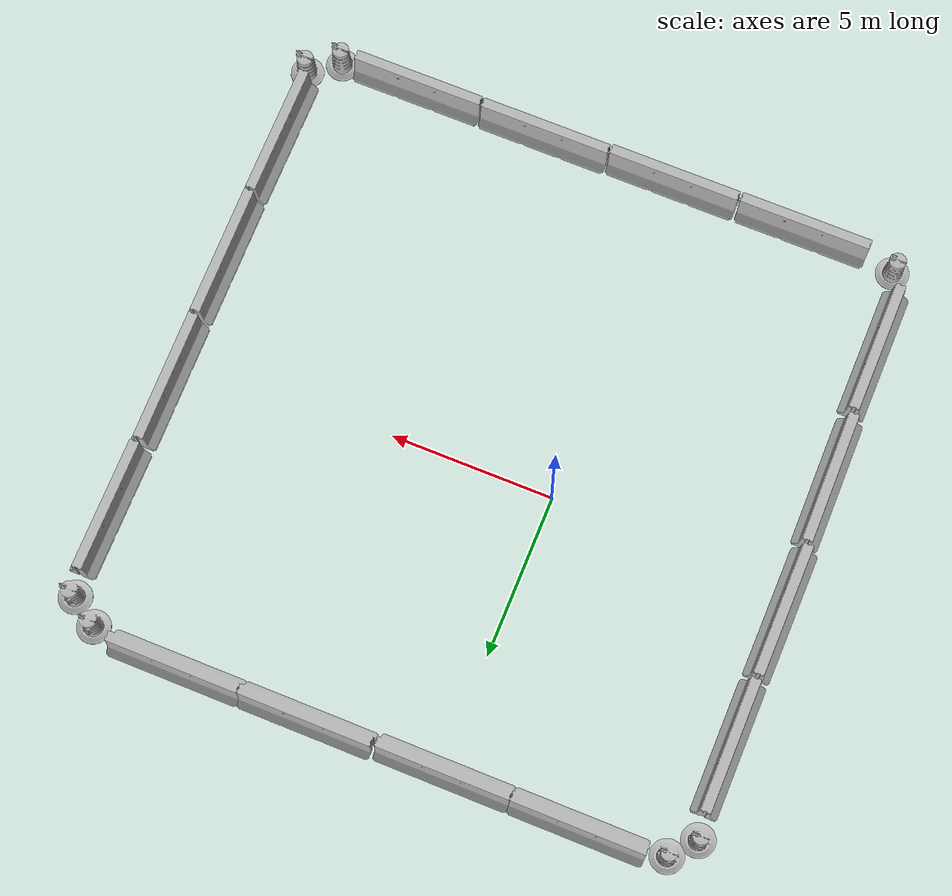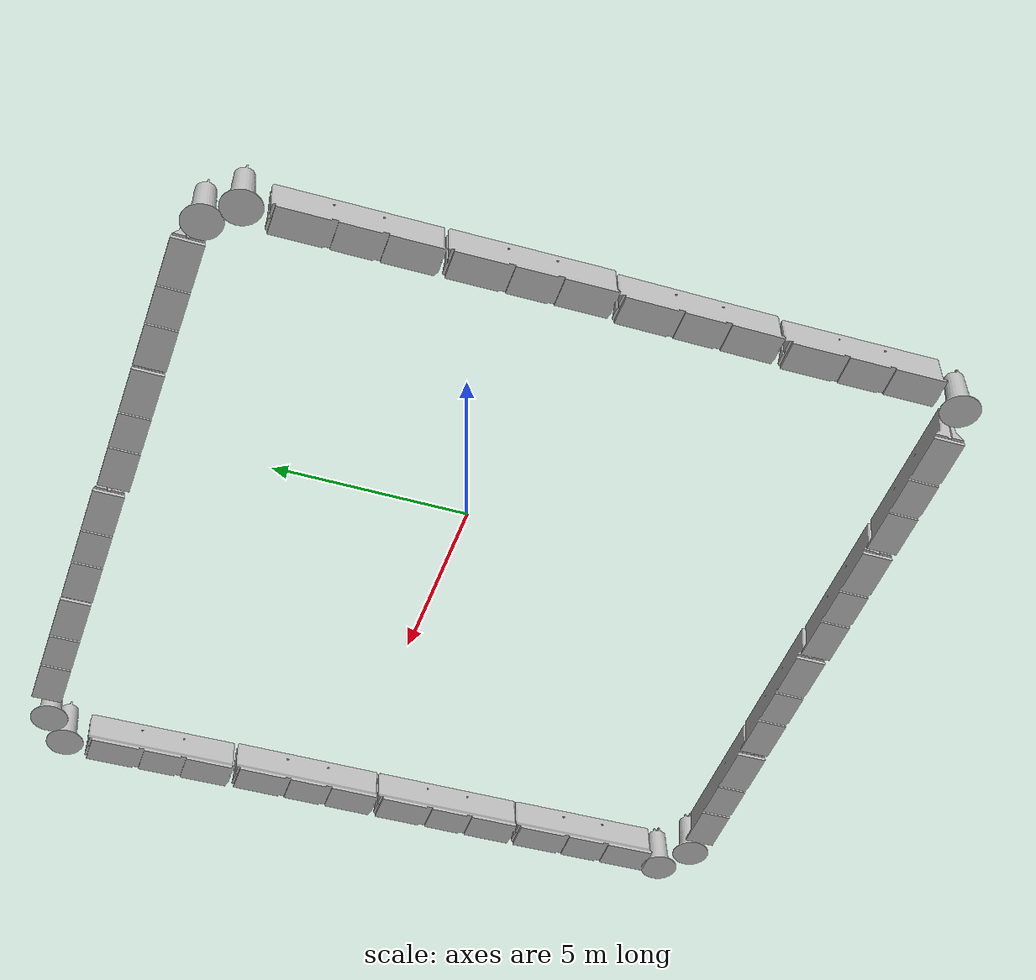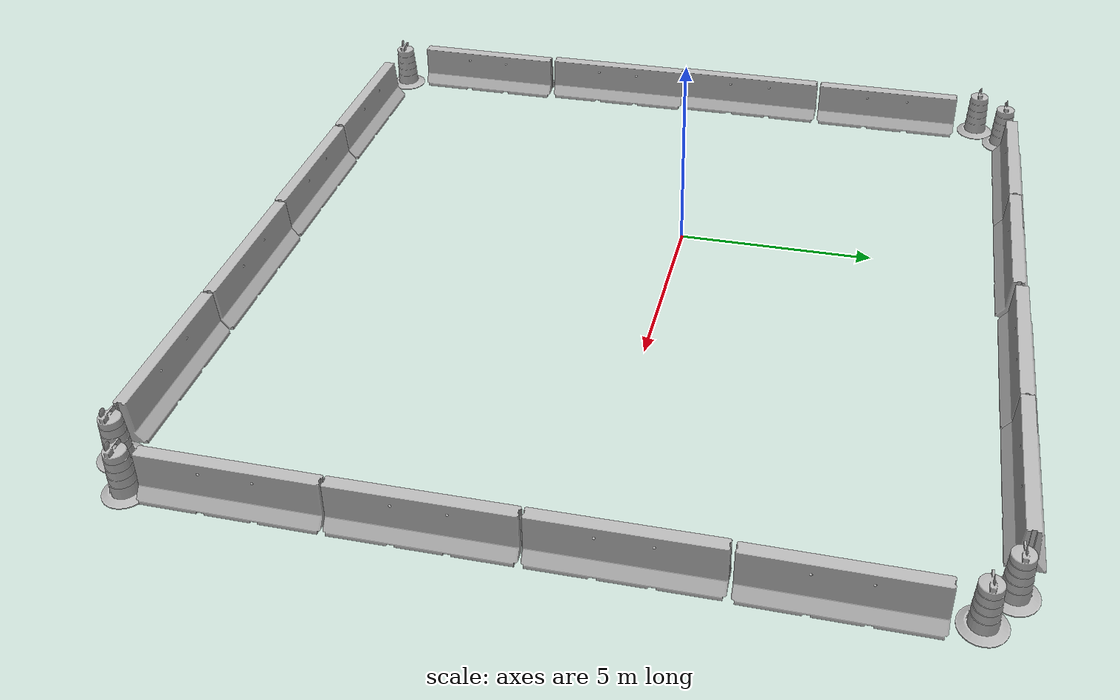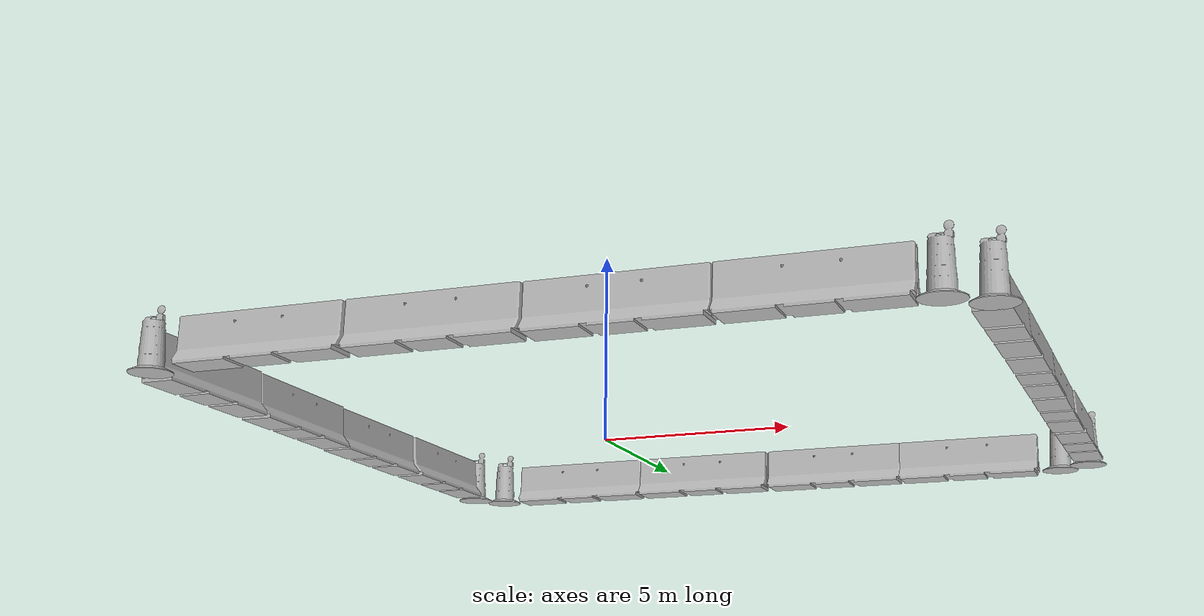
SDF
<?xml version='1.0'?>
<sdf version='1.7'>
  <model name='my_world.world'>
    <model name='Construction Barrel'>
      <link name='link'>
        <inertial>
          <pose>0 0 0.4 0 -0 0</pose>
          <mass>500</mass>
          <inertia>
            <ixx>51.2096</ixx>
            <iyy>51.2096</iyy>
            <izz>25</izz>
            <ixy>0</ixy>
            <ixz>0</ixz>
            <iyz>0</iyz>
          </inertia>
        </inertial>
        <collision name='collision'>
          <geometry>
            <mesh>
              <uri>model://construction_barrel/meshes/construction_barrel.dae</uri>
            </mesh>
          </geometry>
        </collision>
        <visual name='visual'>
          <geometry>
            <mesh>
              <uri>model://construction_barrel/meshes/construction_barrel.dae</uri>
            </mesh>
          </geometry>
        </visual>
      </link>
      <pose>-6.77539 8.39111 0 0 -0 0</pose>
    </model>
    <model name='Construction Barrel_0'>
      <link name='link'>
        <inertial>
          <pose>0 0 0.4 0 -0 0</pose>
          <mass>500</mass>
          <inertia>
            <ixx>51.2096</ixx>
            <iyy>51.2096</iyy>
            <izz>25</izz>
            <ixy>0</ixy>
            <ixz>0</ixz>
            <iyz>0</iyz>
          </inertia>
        </inertial>
        <collision name='collision'>
          <geometry>
            <mesh>
              <uri>model://construction_barrel/meshes/construction_barrel.dae</uri>
            </mesh>
          </geometry>
        </collision>
        <visual name='visual'>
          <geometry>
            <mesh>
              <uri>model://construction_barrel/meshes/construction_barrel.dae</uri>
            </mesh>
          </geometry>
        </visual>
      </link>
      <pose>-7.43633 7.65079 0 0 -0 0</pose>
    </model>
    <model name='Construction Barrel_1'>
      <link name='link'>
        <inertial>
          <pose>0 0 0.4 0 -0 0</pose>
          <mass>500</mass>
          <inertia>
            <ixx>51.2096</ixx>
            <iyy>51.2096</iyy>
            <izz>25</izz>
            <ixy>0</ixy>
            <ixz>0</ixz>
            <iyz>0</iyz>
          </inertia>
        </inertial>
        <collision name='collision'>
          <geometry>
            <mesh>
              <uri>model://construction_barrel/meshes/construction_barrel.dae</uri>
            </mesh>
          </geometry>
        </collision>
        <visual name='visual'>
          <geometry>
            <mesh>
              <uri>model://construction_barrel/meshes/construction_barrel.dae</uri>
            </mesh>
          </geometry>
        </visual>
      </link>
      <pose>-6.8834 -10.1919 0 0 -0 0</pose>
    </model>
    <model name='Construction Barrel_2'>
      <link name='link'>
        <inertial>
          <pose>0 0 0.4 0 -0 0</pose>
          <mass>500</mass>
          <inertia>
            <ixx>51.2096</ixx>
            <iyy>51.2096</iyy>
            <izz>25</izz>
            <ixy>0</ixy>
            <ixz>0</ixz>
            <iyz>0</iyz>
          </inertia>
        </inertial>
        <collision name='collision'>
          <geometry>
            <mesh>
              <uri>model://construction_barrel/meshes/construction_barrel.dae</uri>
            </mesh>
          </geometry>
        </collision>
        <visual name='visual'>
          <geometry>
            <mesh>
              <uri>model://construction_barrel/meshes/construction_barrel.dae</uri>
            </mesh>
          </geometry>
        </visual>
      </link>
      <pose>10.7952 8.4204 0 0 -0 0</pose>
    </model>
    <model name='Construction Barrel_3'>
      <link name='link'>
        <inertial>
          <pose>0 0 0.4 0 -0 0</pose>
          <mass>500</mass>
          <inertia>
            <ixx>51.2096</ixx>
            <iyy>51.2096</iyy>
            <izz>25</izz>
            <ixy>0</ixy>
            <ixz>0</ixz>
            <iyz>0</iyz>
          </inertia>
        </inertial>
        <collision name='collision'>
          <geometry>
            <mesh>
              <uri>model://construction_barrel/meshes/construction_barrel.dae</uri>
            </mesh>
          </geometry>
        </collision>
        <visual name='visual'>
          <geometry>
            <mesh>
              <uri>model://construction_barrel/meshes/construction_barrel.dae</uri>
            </mesh>
          </geometry>
        </visual>
      </link>
      <pose>11.6433 7.82836 0 0 -0 0</pose>
    </model>
    <model name='Construction Barrel_4'>
      <link name='link'>
        <inertial>
          <pose>0 0 0.4 0 -0 0</pose>
          <mass>500</mass>
          <inertia>
            <ixx>51.2096</ixx>
            <iyy>51.2096</iyy>
            <izz>25</izz>
            <ixy>0</ixy>
            <ixz>0</ixz>
            <iyz>0</iyz>
          </inertia>
        </inertial>
        <collision name='collision'>
          <geometry>
            <mesh>
              <uri>model://construction_barrel/meshes/construction_barrel.dae</uri>
            </mesh>
          </geometry>
        </collision>
        <visual name='visual'>
          <geometry>
            <mesh>
              <uri>model://construction_barrel/meshes/construction_barrel.dae</uri>
            </mesh>
          </geometry>
        </visual>
      </link>
      <pose>10.9013 -10.2647 0 0 -0 0</pose>
    </model>
    <model name='Construction Barrel_5'>
      <link name='link'>
        <inertial>
          <pose>0 0 0.4 0 -0 0</pose>
          <mass>500</mass>
          <inertia>
            <ixx>51.2096</ixx>
            <iyy>51.2096</iyy>
            <izz>25</izz>
            <ixy>0</ixy>
            <ixz>0</ixz>
            <iyz>0</iyz>
          </inertia>
        </inertial>
        <collision name='collision'>
          <geometry>
            <mesh>
              <uri>model://construction_barrel/meshes/construction_barrel.dae</uri>
            </mesh>
          </geometry>
        </collision>
        <visual name='visual'>
          <geometry>
            <mesh>
              <uri>model://construction_barrel/meshes/construction_barrel.dae</uri>
            </mesh>
          </geometry>
        </visual>
      </link>
      <pose>11.8012 -9.63471 0 0 -0 0</pose>
    </model>
    <model name='jersey_barrier'>
      <static>1</static>
      <link name='link'>
        <visual name='visual'>
          <geometry>
            <mesh>
              <uri>model://jersey_barrier/meshes/jersey_barrier.dae</uri>
            </mesh>
          </geometry>
        </visual>
        <collision name='upright'>
          <pose>0 0 0.5715 0 -0 0</pose>
          <geometry>
            <box>
              <size>4.06542 0.3063 1.143</size>
            </box>
          </geometry>
        </collision>
        <collision name='base'>
          <pose>0 0 0.032258 0 -0 0</pose>
          <geometry>
            <box>
              <size>4.06542 0.8107 0.064516</size>
            </box>
          </geometry>
        </collision>
        <collision name='base2'>
          <pose>0 0 0.1 0 -0 0</pose>
          <geometry>
            <box>
              <size>4.06542 0.65 0.1</size>
            </box>
          </geometry>
        </collision>
        <collision name='base3'>
          <pose>0 0 0.2 0 -0 0</pose>
          <geometry>
            <box>
              <size>4.06542 0.5 0.1</size>
            </box>
          </geometry>
        </collision>
        <collision name='left-angle'>
          <pose>0 -0.224 0.2401 0.9 -0 0</pose>
          <geometry>
            <box>
              <size>4.06542 0.5 0.064516</size>
            </box>
          </geometry>
        </collision>
        <collision name='right-angle'>
          <pose>0 0.224 0.2401 -0.9 0 0</pose>
          <geometry>
            <box>
              <size>4.06542 0.5 0.064516</size>
            </box>
          </geometry>
        </collision>
      </link>
      <pose>-4.17808 8.56431 0 0 -0 0</pose>
    </model>
    <model name='jersey_barrier_0'>
      <static>1</static>
      <link name='link'>
        <visual name='visual'>
          <geometry>
            <mesh>
              <uri>model://jersey_barrier/meshes/jersey_barrier.dae</uri>
            </mesh>
          </geometry>
        </visual>
        <collision name='upright'>
          <pose>0 0 0.5715 0 -0 0</pose>
          <geometry>
            <box>
              <size>4.06542 0.3063 1.143</size>
            </box>
          </geometry>
        </collision>
        <collision name='base'>
          <pose>0 0 0.032258 0 -0 0</pose>
          <geometry>
            <box>
              <size>4.06542 0.8107 0.064516</size>
            </box>
          </geometry>
        </collision>
        <collision name='base2'>
          <pose>0 0 0.1 0 -0 0</pose>
          <geometry>
            <box>
              <size>4.06542 0.65 0.1</size>
            </box>
          </geometry>
        </collision>
        <collision name='base3'>
          <pose>0 0 0.2 0 -0 0</pose>
          <geometry>
            <box>
              <size>4.06542 0.5 0.1</size>
            </box>
          </geometry>
        </collision>
        <collision name='left-angle'>
          <pose>0 -0.224 0.2401 0.9 -0 0</pose>
          <geometry>
            <box>
              <size>4.06542 0.5 0.064516</size>
            </box>
          </geometry>
        </collision>
        <collision name='right-angle'>
          <pose>0 0.224 0.2401 -0.9 0 0</pose>
          <geometry>
            <box>
              <size>4.06542 0.5 0.064516</size>
            </box>
          </geometry>
        </collision>
      </link>
      <pose>-0.108428 8.56564 0 0 -0 0</pose>
    </model>
    <model name='jersey_barrier_1'>
      <static>1</static>
      <link name='link'>
        <visual name='visual'>
          <geometry>
            <mesh>
              <uri>model://jersey_barrier/meshes/jersey_barrier.dae</uri>
            </mesh>
          </geometry>
        </visual>
        <collision name='upright'>
          <pose>0 0 0.5715 0 -0 0</pose>
          <geometry>
            <box>
              <size>4.06542 0.3063 1.143</size>
            </box>
          </geometry>
        </collision>
        <collision name='base'>
          <pose>0 0 0.032258 0 -0 0</pose>
          <geometry>
            <box>
              <size>4.06542 0.8107 0.064516</size>
            </box>
          </geometry>
        </collision>
        <collision name='base2'>
          <pose>0 0 0.1 0 -0 0</pose>
          <geometry>
            <box>
              <size>4.06542 0.65 0.1</size>
            </box>
          </geometry>
        </collision>
        <collision name='base3'>
          <pose>0 0 0.2 0 -0 0</pose>
          <geometry>
            <box>
              <size>4.06542 0.5 0.1</size>
            </box>
          </geometry>
        </collision>
        <collision name='left-angle'>
          <pose>0 -0.224 0.2401 0.9 -0 0</pose>
          <geometry>
            <box>
              <size>4.06542 0.5 0.064516</size>
            </box>
          </geometry>
        </collision>
        <collision name='right-angle'>
          <pose>0 0.224 0.2401 -0.9 0 0</pose>
          <geometry>
            <box>
              <size>4.06542 0.5 0.064516</size>
            </box>
          </geometry>
        </collision>
      </link>
      <pose>4.05138 8.63047 0 0 -0 0</pose>
    </model>
    <model name='jersey_barrier_10'>
      <static>1</static>
      <link name='link'>
        <visual name='visual'>
          <geometry>
            <mesh>
              <uri>model://jersey_barrier/meshes/jersey_barrier.dae</uri>
            </mesh>
          </geometry>
        </visual>
        <collision name='upright'>
          <pose>0 0 0.5715 0 -0 0</pose>
          <geometry>
            <box>
              <size>4.06542 0.3063 1.143</size>
            </box>
          </geometry>
        </collision>
        <collision name='base'>
          <pose>0 0 0.032258 0 -0 0</pose>
          <geometry>
            <box>
              <size>4.06542 0.8107 0.064516</size>
            </box>
          </geometry>
        </collision>
        <collision name='base2'>
          <pose>0 0 0.1 0 -0 0</pose>
          <geometry>
            <box>
              <size>4.06542 0.65 0.1</size>
            </box>
          </geometry>
        </collision>
        <collision name='base3'>
          <pose>0 0 0.2 0 -0 0</pose>
          <geometry>
            <box>
              <size>4.06542 0.5 0.1</size>
            </box>
          </geometry>
        </collision>
        <collision name='left-angle'>
          <pose>0 -0.224 0.2401 0.9 -0 0</pose>
          <geometry>
            <box>
              <size>4.06542 0.5 0.064516</size>
            </box>
          </geometry>
        </collision>
        <collision name='right-angle'>
          <pose>0 0.224 0.2401 -0.9 0 0</pose>
          <geometry>
            <box>
              <size>4.06542 0.5 0.064516</size>
            </box>
          </geometry>
        </collision>
      </link>
      <pose>-7.2125 -7.52337 0 0 -0 1.56523</pose>
    </model>
    <model name='jersey_barrier_11'>
      <static>1</static>
      <link name='link'>
        <visual name='visual'>
          <geometry>
            <mesh>
              <uri>model://jersey_barrier/meshes/jersey_barrier.dae</uri>
            </mesh>
          </geometry>
        </visual>
        <collision name='upright'>
          <pose>0 0 0.5715 0 -0 0</pose>
          <geometry>
            <box>
              <size>4.06542 0.3063 1.143</size>
            </box>
          </geometry>
        </collision>
        <collision name='base'>
          <pose>0 0 0.032258 0 -0 0</pose>
          <geometry>
            <box>
              <size>4.06542 0.8107 0.064516</size>
            </box>
          </geometry>
        </collision>
        <collision name='base2'>
          <pose>0 0 0.1 0 -0 0</pose>
          <geometry>
            <box>
              <size>4.06542 0.65 0.1</size>
            </box>
          </geometry>
        </collision>
        <collision name='base3'>
          <pose>0 0 0.2 0 -0 0</pose>
          <geometry>
            <box>
              <size>4.06542 0.5 0.1</size>
            </box>
          </geometry>
        </collision>
        <collision name='left-angle'>
          <pose>0 -0.224 0.2401 0.9 -0 0</pose>
          <geometry>
            <box>
              <size>4.06542 0.5 0.064516</size>
            </box>
          </geometry>
        </collision>
        <collision name='right-angle'>
          <pose>0 0.224 0.2401 -0.9 0 0</pose>
          <geometry>
            <box>
              <size>4.06542 0.5 0.064516</size>
            </box>
          </geometry>
        </collision>
      </link>
      <pose>11.7108 5.16677 0 0 -0 1.56566</pose>
    </model>
    <model name='jersey_barrier_12'>
      <static>1</static>
      <link name='link'>
        <visual name='visual'>
          <geometry>
            <mesh>
              <uri>model://jersey_barrier/meshes/jersey_barrier.dae</uri>
            </mesh>
          </geometry>
        </visual>
        <collision name='upright'>
          <pose>0 0 0.5715 0 -0 0</pose>
          <geometry>
            <box>
              <size>4.06542 0.3063 1.143</size>
            </box>
          </geometry>
        </collision>
        <collision name='base'>
          <pose>0 0 0.032258 0 -0 0</pose>
          <geometry>
            <box>
              <size>4.06542 0.8107 0.064516</size>
            </box>
          </geometry>
        </collision>
        <collision name='base2'>
          <pose>0 0 0.1 0 -0 0</pose>
          <geometry>
            <box>
              <size>4.06542 0.65 0.1</size>
            </box>
          </geometry>
        </collision>
        <collision name='base3'>
          <pose>0 0 0.2 0 -0 0</pose>
          <geometry>
            <box>
              <size>4.06542 0.5 0.1</size>
            </box>
          </geometry>
        </collision>
        <collision name='left-angle'>
          <pose>0 -0.224 0.2401 0.9 -0 0</pose>
          <geometry>
            <box>
              <size>4.06542 0.5 0.064516</size>
            </box>
          </geometry>
        </collision>
        <collision name='right-angle'>
          <pose>0 0.224 0.2401 -0.9 0 0</pose>
          <geometry>
            <box>
              <size>4.06542 0.5 0.064516</size>
            </box>
          </geometry>
        </collision>
      </link>
      <pose>11.6726 1.00445 0 0 -0 1.57461</pose>
    </model>
    <model name='jersey_barrier_13'>
      <static>1</static>
      <link name='link'>
        <visual name='visual'>
          <geometry>
            <mesh>
              <uri>model://jersey_barrier/meshes/jersey_barrier.dae</uri>
            </mesh>
          </geometry>
        </visual>
        <collision name='upright'>
          <pose>0 0 0.5715 0 -0 0</pose>
          <geometry>
            <box>
              <size>4.06542 0.3063 1.143</size>
            </box>
          </geometry>
        </collision>
        <collision name='base'>
          <pose>0 0 0.032258 0 -0 0</pose>
          <geometry>
            <box>
              <size>4.06542 0.8107 0.064516</size>
            </box>
          </geometry>
        </collision>
        <collision name='base2'>
          <pose>0 0 0.1 0 -0 0</pose>
          <geometry>
            <box>
              <size>4.06542 0.65 0.1</size>
            </box>
          </geometry>
        </collision>
        <collision name='base3'>
          <pose>0 0 0.2 0 -0 0</pose>
          <geometry>
            <box>
              <size>4.06542 0.5 0.1</size>
            </box>
          </geometry>
        </collision>
        <collision name='left-angle'>
          <pose>0 -0.224 0.2401 0.9 -0 0</pose>
          <geometry>
            <box>
              <size>4.06542 0.5 0.064516</size>
            </box>
          </geometry>
        </collision>
        <collision name='right-angle'>
          <pose>0 0.224 0.2401 -0.9 0 0</pose>
          <geometry>
            <box>
              <size>4.06542 0.5 0.064516</size>
            </box>
          </geometry>
        </collision>
      </link>
      <pose>11.6863 -3.12369 0 0 -0 1.57229</pose>
    </model>
    <model name='jersey_barrier_14'>
      <static>1</static>
      <link name='link'>
        <visual name='visual'>
          <geometry>
            <mesh>
              <uri>model://jersey_barrier/meshes/jersey_barrier.dae</uri>
            </mesh>
          </geometry>
        </visual>
        <collision name='upright'>
          <pose>0 0 0.5715 0 -0 0</pose>
          <geometry>
            <box>
              <size>4.06542 0.3063 1.143</size>
            </box>
          </geometry>
        </collision>
        <collision name='base'>
          <pose>0 0 0.032258 0 -0 0</pose>
          <geometry>
            <box>
              <size>4.06542 0.8107 0.064516</size>
            </box>
          </geometry>
        </collision>
        <collision name='base2'>
          <pose>0 0 0.1 0 -0 0</pose>
          <geometry>
            <box>
              <size>4.06542 0.65 0.1</size>
            </box>
          </geometry>
        </collision>
        <collision name='base3'>
          <pose>0 0 0.2 0 -0 0</pose>
          <geometry>
            <box>
              <size>4.06542 0.5 0.1</size>
            </box>
          </geometry>
        </collision>
        <collision name='left-angle'>
          <pose>0 -0.224 0.2401 0.9 -0 0</pose>
          <geometry>
            <box>
              <size>4.06542 0.5 0.064516</size>
            </box>
          </geometry>
        </collision>
        <collision name='right-angle'>
          <pose>0 0.224 0.2401 -0.9 0 0</pose>
          <geometry>
            <box>
              <size>4.06542 0.5 0.064516</size>
            </box>
          </geometry>
        </collision>
      </link>
      <pose>11.678 -7.23202 0 0 -0 1.56529</pose>
    </model>
    <model name='jersey_barrier_2'>
      <static>1</static>
      <link name='link'>
        <visual name='visual'>
          <geometry>
            <mesh>
              <uri>model://jersey_barrier/meshes/jersey_barrier.dae</uri>
            </mesh>
          </geometry>
        </visual>
        <collision name='upright'>
          <pose>0 0 0.5715 0 -0 0</pose>
          <geometry>
            <box>
              <size>4.06542 0.3063 1.143</size>
            </box>
          </geometry>
        </collision>
        <collision name='base'>
          <pose>0 0 0.032258 0 -0 0</pose>
          <geometry>
            <box>
              <size>4.06542 0.8107 0.064516</size>
            </box>
          </geometry>
        </collision>
        <collision name='base2'>
          <pose>0 0 0.1 0 -0 0</pose>
          <geometry>
            <box>
              <size>4.06542 0.65 0.1</size>
            </box>
          </geometry>
        </collision>
        <collision name='base3'>
          <pose>0 0 0.2 0 -0 0</pose>
          <geometry>
            <box>
              <size>4.06542 0.5 0.1</size>
            </box>
          </geometry>
        </collision>
        <collision name='left-angle'>
          <pose>0 -0.224 0.2401 0.9 -0 0</pose>
          <geometry>
            <box>
              <size>4.06542 0.5 0.064516</size>
            </box>
          </geometry>
        </collision>
        <collision name='right-angle'>
          <pose>0 0.224 0.2401 -0.9 0 0</pose>
          <geometry>
            <box>
              <size>4.06542 0.5 0.064516</size>
            </box>
          </geometry>
        </collision>
      </link>
      <pose>8.10126 8.63732 0 0 -0 0</pose>
    </model>
    <model name='jersey_barrier_3'>
      <static>1</static>
      <link name='link'>
        <visual name='visual'>
          <geometry>
            <mesh>
              <uri>model://jersey_barrier/meshes/jersey_barrier.dae</uri>
            </mesh>
          </geometry>
        </visual>
        <collision name='upright'>
          <pose>0 0 0.5715 0 -0 0</pose>
          <geometry>
            <box>
              <size>4.06542 0.3063 1.143</size>
            </box>
          </geometry>
        </collision>
        <collision name='base'>
          <pose>0 0 0.032258 0 -0 0</pose>
          <geometry>
            <box>
              <size>4.06542 0.8107 0.064516</size>
            </box>
          </geometry>
        </collision>
        <collision name='base2'>
          <pose>0 0 0.1 0 -0 0</pose>
          <geometry>
            <box>
              <size>4.06542 0.65 0.1</size>
            </box>
          </geometry>
        </collision>
        <collision name='base3'>
          <pose>0 0 0.2 0 -0 0</pose>
          <geometry>
            <box>
              <size>4.06542 0.5 0.1</size>
            </box>
          </geometry>
        </collision>
        <collision name='left-angle'>
          <pose>0 -0.224 0.2401 0.9 -0 0</pose>
          <geometry>
            <box>
              <size>4.06542 0.5 0.064516</size>
            </box>
          </geometry>
        </collision>
        <collision name='right-angle'>
          <pose>0 0.224 0.2401 -0.9 0 0</pose>
          <geometry>
            <box>
              <size>4.06542 0.5 0.064516</size>
            </box>
          </geometry>
        </collision>
      </link>
      <pose>-3.94513 -10.38 0 0 -0 0</pose>
    </model>
    <model name='jersey_barrier_4'>
      <static>1</static>
      <link name='link'>
        <visual name='visual'>
          <geometry>
            <mesh>
              <uri>model://jersey_barrier/meshes/jersey_barrier.dae</uri>
            </mesh>
          </geometry>
        </visual>
        <collision name='upright'>
          <pose>0 0 0.5715 0 -0 0</pose>
          <geometry>
            <box>
              <size>4.06542 0.3063 1.143</size>
            </box>
          </geometry>
        </collision>
        <collision name='base'>
          <pose>0 0 0.032258 0 -0 0</pose>
          <geometry>
            <box>
              <size>4.06542 0.8107 0.064516</size>
            </box>
          </geometry>
        </collision>
        <collision name='base2'>
          <pose>0 0 0.1 0 -0 0</pose>
          <geometry>
            <box>
              <size>4.06542 0.65 0.1</size>
            </box>
          </geometry>
        </collision>
        <collision name='base3'>
          <pose>0 0 0.2 0 -0 0</pose>
          <geometry>
            <box>
              <size>4.06542 0.5 0.1</size>
            </box>
          </geometry>
        </collision>
        <collision name='left-angle'>
          <pose>0 -0.224 0.2401 0.9 -0 0</pose>
          <geometry>
            <box>
              <size>4.06542 0.5 0.064516</size>
            </box>
          </geometry>
        </collision>
        <collision name='right-angle'>
          <pose>0 0.224 0.2401 -0.9 0 0</pose>
          <geometry>
            <box>
              <size>4.06542 0.5 0.064516</size>
            </box>
          </geometry>
        </collision>
      </link>
      <pose>0.188679 -10.3628 0 0 -0 0</pose>
    </model>
    <model name='jersey_barrier_5'>
      <static>1</static>
      <link name='link'>
        <visual name='visual'>
          <geometry>
            <mesh>
              <uri>model://jersey_barrier/meshes/jersey_barrier.dae</uri>
            </mesh>
          </geometry>
        </visual>
        <collision name='upright'>
          <pose>0 0 0.5715 0 -0 0</pose>
          <geometry>
            <box>
              <size>4.06542 0.3063 1.143</size>
            </box>
          </geometry>
        </collision>
        <collision name='base'>
          <pose>0 0 0.032258 0 -0 0</pose>
          <geometry>
            <box>
              <size>4.06542 0.8107 0.064516</size>
            </box>
          </geometry>
        </collision>
        <collision name='base2'>
          <pose>0 0 0.1 0 -0 0</pose>
          <geometry>
            <box>
              <size>4.06542 0.65 0.1</size>
            </box>
          </geometry>
        </collision>
        <collision name='base3'>
          <pose>0 0 0.2 0 -0 0</pose>
          <geometry>
            <box>
              <size>4.06542 0.5 0.1</size>
            </box>
          </geometry>
        </collision>
        <collision name='left-angle'>
          <pose>0 -0.224 0.2401 0.9 -0 0</pose>
          <geometry>
            <box>
              <size>4.06542 0.5 0.064516</size>
            </box>
          </geometry>
        </collision>
        <collision name='right-angle'>
          <pose>0 0.224 0.2401 -0.9 0 0</pose>
          <geometry>
            <box>
              <size>4.06542 0.5 0.064516</size>
            </box>
          </geometry>
        </collision>
      </link>
      <pose>4.29646 -10.3172 0 0 -0 0</pose>
    </model>
    <model name='jersey_barrier_6'>
      <static>1</static>
      <link name='link'>
        <visual name='visual'>
          <geometry>
            <mesh>
              <uri>model://jersey_barrier/meshes/jersey_barrier.dae</uri>
            </mesh>
          </geometry>
        </visual>
        <collision name='upright'>
          <pose>0 0 0.5715 0 -0 0</pose>
          <geometry>
            <box>
              <size>4.06542 0.3063 1.143</size>
            </box>
          </geometry>
        </collision>
        <collision name='base'>
          <pose>0 0 0.032258 0 -0 0</pose>
          <geometry>
            <box>
              <size>4.06542 0.8107 0.064516</size>
            </box>
          </geometry>
        </collision>
        <collision name='base2'>
          <pose>0 0 0.1 0 -0 0</pose>
          <geometry>
            <box>
              <size>4.06542 0.65 0.1</size>
            </box>
          </geometry>
        </collision>
        <collision name='base3'>
          <pose>0 0 0.2 0 -0 0</pose>
          <geometry>
            <box>
              <size>4.06542 0.5 0.1</size>
            </box>
          </geometry>
        </collision>
        <collision name='left-angle'>
          <pose>0 -0.224 0.2401 0.9 -0 0</pose>
          <geometry>
            <box>
              <size>4.06542 0.5 0.064516</size>
            </box>
          </geometry>
        </collision>
        <collision name='right-angle'>
          <pose>0 0.224 0.2401 -0.9 0 0</pose>
          <geometry>
            <box>
              <size>4.06542 0.5 0.064516</size>
            </box>
          </geometry>
        </collision>
      </link>
      <pose>8.40426 -10.3256 0 0 -0 0</pose>
    </model>
    <model name='jersey_barrier_7'>
      <static>1</static>
      <link name='link'>
        <visual name='visual'>
          <geometry>
            <mesh>
              <uri>model://jersey_barrier/meshes/jersey_barrier.dae</uri>
            </mesh>
          </geometry>
        </visual>
        <collision name='upright'>
          <pose>0 0 0.5715 0 -0 0</pose>
          <geometry>
            <box>
              <size>4.06542 0.3063 1.143</size>
            </box>
          </geometry>
        </collision>
        <collision name='base'>
          <pose>0 0 0.032258 0 -0 0</pose>
          <geometry>
            <box>
              <size>4.06542 0.8107 0.064516</size>
            </box>
          </geometry>
        </collision>
        <collision name='base2'>
          <pose>0 0 0.1 0 -0 0</pose>
          <geometry>
            <box>
              <size>4.06542 0.65 0.1</size>
            </box>
          </geometry>
        </collision>
        <collision name='base3'>
          <pose>0 0 0.2 0 -0 0</pose>
          <geometry>
            <box>
              <size>4.06542 0.5 0.1</size>
            </box>
          </geometry>
        </collision>
        <collision name='left-angle'>
          <pose>0 -0.224 0.2401 0.9 -0 0</pose>
          <geometry>
            <box>
              <size>4.06542 0.5 0.064516</size>
            </box>
          </geometry>
        </collision>
        <collision name='right-angle'>
          <pose>0 0.224 0.2401 -0.9 0 0</pose>
          <geometry>
            <box>
              <size>4.06542 0.5 0.064516</size>
            </box>
          </geometry>
        </collision>
      </link>
      <pose>-7.31781 4.96382 0 0 -0 1.56673</pose>
    </model>
    <model name='jersey_barrier_8'>
      <static>1</static>
      <link name='link'>
        <visual name='visual'>
          <geometry>
            <mesh>
              <uri>model://jersey_barrier/meshes/jersey_barrier.dae</uri>
            </mesh>
          </geometry>
        </visual>
        <collision name='upright'>
          <pose>0 0 0.5715 0 -0 0</pose>
          <geometry>
            <box>
              <size>4.06542 0.3063 1.143</size>
            </box>
          </geometry>
        </collision>
        <collision name='base'>
          <pose>0 0 0.032258 0 -0 0</pose>
          <geometry>
            <box>
              <size>4.06542 0.8107 0.064516</size>
            </box>
          </geometry>
        </collision>
        <collision name='base2'>
          <pose>0 0 0.1 0 -0 0</pose>
          <geometry>
            <box>
              <size>4.06542 0.65 0.1</size>
            </box>
          </geometry>
        </collision>
        <collision name='base3'>
          <pose>0 0 0.2 0 -0 0</pose>
          <geometry>
            <box>
              <size>4.06542 0.5 0.1</size>
            </box>
          </geometry>
        </collision>
        <collision name='left-angle'>
          <pose>0 -0.224 0.2401 0.9 -0 0</pose>
          <geometry>
            <box>
              <size>4.06542 0.5 0.064516</size>
            </box>
          </geometry>
        </collision>
        <collision name='right-angle'>
          <pose>0 0.224 0.2401 -0.9 0 0</pose>
          <geometry>
            <box>
              <size>4.06542 0.5 0.064516</size>
            </box>
          </geometry>
        </collision>
      </link>
      <pose>-7.35526 0.801267 0 0 -0 1.56272</pose>
    </model>
    <model name='jersey_barrier_9'>
      <static>1</static>
      <link name='link'>
        <visual name='visual'>
          <geometry>
            <mesh>
              <uri>model://jersey_barrier/meshes/jersey_barrier.dae</uri>
            </mesh>
          </geometry>
        </visual>
        <collision name='upright'>
          <pose>0 0 0.5715 0 -0 0</pose>
          <geometry>
            <box>
              <size>4.06542 0.3063 1.143</size>
            </box>
          </geometry>
        </collision>
        <collision name='base'>
          <pose>0 0 0.032258 0 -0 0</pose>
          <geometry>
            <box>
              <size>4.06542 0.8107 0.064516</size>
            </box>
          </geometry>
        </collision>
        <collision name='base2'>
          <pose>0 0 0.1 0 -0 0</pose>
          <geometry>
            <box>
              <size>4.06542 0.65 0.1</size>
            </box>
          </geometry>
        </collision>
        <collision name='base3'>
          <pose>0 0 0.2 0 -0 0</pose>
          <geometry>
            <box>
              <size>4.06542 0.5 0.1</size>
            </box>
          </geometry>
        </collision>
        <collision name='left-angle'>
          <pose>0 -0.224 0.2401 0.9 -0 0</pose>
          <geometry>
            <box>
              <size>4.06542 0.5 0.064516</size>
            </box>
          </geometry>
        </collision>
        <collision name='right-angle'>
          <pose>0 0.224 0.2401 -0.9 0 0</pose>
          <geometry>
            <box>
              <size>4.06542 0.5 0.064516</size>
            </box>
          </geometry>
        </collision>
      </link>
      <pose>-7.28084 -3.33642 0 0 -0 1.57493</pose>
    </model>
    <static>0</static>
    <allow_auto_disable>1</allow_auto_disable>
  </model>
</sdf>
